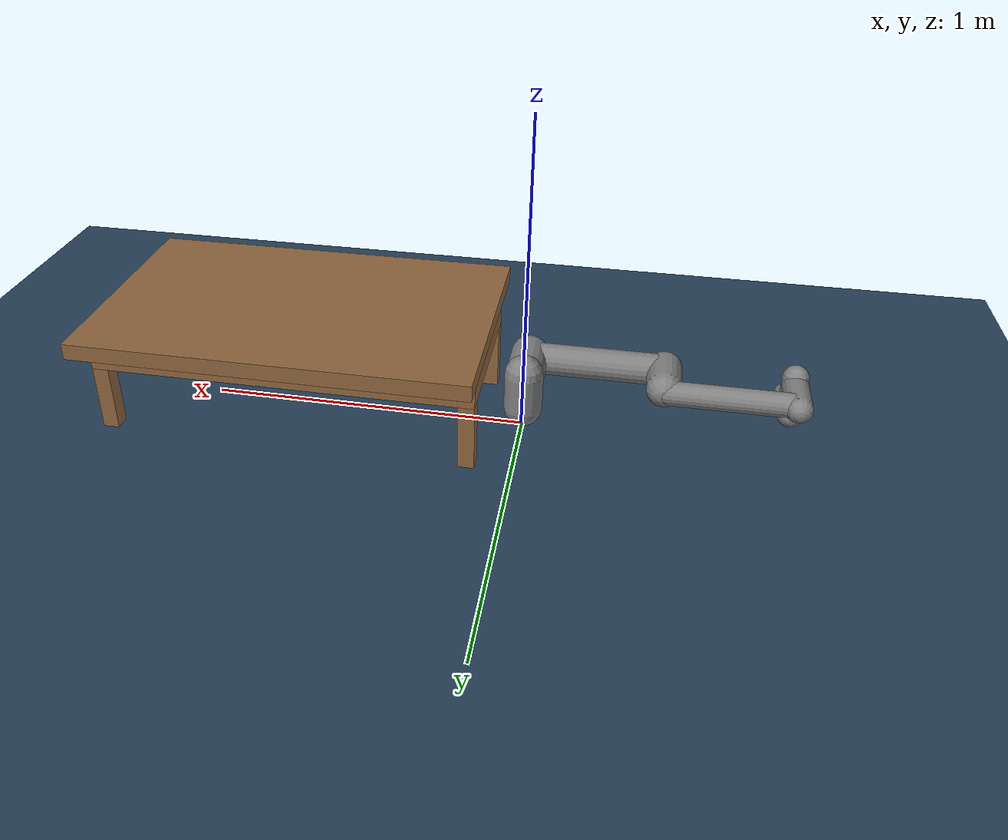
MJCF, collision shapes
<mujoco model="ur5e scene">
  <include file="ur5e.xml"/>
  <include file="table.xml"/>

  <statistic center="0.3 0 0.4" extent="0.8"/>

  <visual>
    <headlight diffuse="0.6 0.6 0.6" ambient="0.1 0.1 0.1" specular="0 0 0"/>
    <rgba haze="0.15 0.25 0.35 1"/>
    <global azimuth="120" elevation="-20"/>
  </visual>

  <asset>
    <texture type="skybox" builtin="gradient" rgb1="0.3 0.5 0.7" rgb2="0 0 0" width="512" height="3072"/>
    <texture type="2d" name="groundplane" builtin="checker" mark="edge" rgb1="0.2 0.3 0.4" rgb2="0.1 0.2 0.3"
      markrgb="0.8 0.8 0.8" width="300" height="300"/>
    <material name="groundplane" texture="groundplane" texuniform="true" texrepeat="5 5" reflectance="0.2"/>
  </asset>

  <worldbody>
    <light pos="0 0 1.5" dir="0 0 -1" directional="true"/>
    <geom name="floor" size="0 0 0.05" type="plane" material="groundplane"/>
  </worldbody>
</mujoco>

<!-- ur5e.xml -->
<mujoco model="ur5e">
  <compiler angle="radian" meshdir="assets" autolimits="true"/>

  <option integrator="implicitfast"/>

  <default>
    <default class="ur5e">
      <material specular="0.5" shininess="0.25"/>
      <joint axis="0 1 0" range="-6.28319 6.28319" armature="0.1"/>
      <general gaintype="fixed" biastype="affine" ctrlrange="-6.2831 6.2831" gainprm="2000" biasprm="0 -2000 -400"
        forcerange="-150 150"/>
      <default class="size3">
        <default class="size3_limited">
          <joint range="-3.1415 3.1415"/>
          <general ctrlrange="-3.1415 3.1415"/>
        </default>
      </default>
      <default class="size1">
        <general gainprm="500" biasprm="0 -500 -100" forcerange="-28 28"/>
      </default>
      <default class="visual">
        <geom type="mesh" contype="0" conaffinity="0" group="2"/>
      </default>
      <default class="collision">
        <geom type="capsule" group="3"/>
        <default class="eef_collision">
          <geom type="cylinder"/>
        </default>
      </default>
      <site size="0.001" rgba="0.5 0.5 0.5 0.3" group="4"/>
    </default>
  </default>

  <asset>
    <material class="ur5e" name="black" rgba="0.033 0.033 0.033 1"/>
    <material class="ur5e" name="jointgray" rgba="0.278 0.278 0.278 1"/>
    <material class="ur5e" name="linkgray" rgba="0.82 0.82 0.82 1"/>
    <material class="ur5e" name="urblue" rgba="0.49 0.678 0.8 1"/>

    <mesh file="base_0.obj"/>
    <mesh file="base_1.obj"/>
    <mesh file="shoulder_0.obj"/>
    <mesh file="shoulder_1.obj"/>
    <mesh file="shoulder_2.obj"/>
    <mesh file="upperarm_0.obj"/>
    <mesh file="upperarm_1.obj"/>
    <mesh file="upperarm_2.obj"/>
    <mesh file="upperarm_3.obj"/>
    <mesh file="forearm_0.obj"/>
    <mesh file="forearm_1.obj"/>
    <mesh file="forearm_2.obj"/>
    <mesh file="forearm_3.obj"/>
    <mesh file="wrist1_0.obj"/>
    <mesh file="wrist1_1.obj"/>
    <mesh file="wrist1_2.obj"/>
    <mesh file="wrist2_0.obj"/>
    <mesh file="wrist2_1.obj"/>
    <mesh file="wrist2_2.obj"/>
    <mesh file="wrist3.obj"/>
  </asset>

  <worldbody>
    <light name="spotlight" mode="targetbodycom" target="wrist_2_link" pos="0 -1 2"/>
    <body name="base" quat="0 0 0 -1" childclass="ur5e">
      <inertial mass="4.0" pos="0 0 0" diaginertia="0.00443333156 0.00443333156 0.0072"/>
      <geom mesh="base_0" material="black" class="visual"/>
      <geom mesh="base_1" material="jointgray" class="visual"/>
      <body name="shoulder_link" pos="0 0 0.163">
        <inertial mass="3.7" pos="0 0 0" diaginertia="0.0102675 0.0102675 0.00666"/>
        <joint name="shoulder_pan_joint" class="size3" axis="0 0 1"/>
        <geom mesh="shoulder_0" material="urblue" class="visual"/>
        <geom mesh="shoulder_1" material="black" class="visual"/>
        <geom mesh="shoulder_2" material="jointgray" class="visual"/>
        <geom class="collision" size="0.06 0.06" pos="0 0 -0.04"/>
        <body name="upper_arm_link" pos="0 0.138 0" quat="1 0 1 0">
          <inertial mass="8.393" pos="0 0 0.2125" diaginertia="0.133886 0.133886 0.0151074"/>
          <joint name="shoulder_lift_joint" class="size3"/>
          <geom mesh="upperarm_0" material="linkgray" class="visual"/>
          <geom mesh="upperarm_1" material="black" class="visual"/>
          <geom mesh="upperarm_2" material="jointgray" class="visual"/>
          <geom mesh="upperarm_3" material="urblue" class="visual"/>
          <geom class="collision" pos="0 -0.04 0" quat="1 1 0 0" size="0.06 0.06"/>
          <geom class="collision" size="0.05 0.2" pos="0 0 0.2"/>
          <body name="forearm_link" pos="0 -0.131 0.425">
            <inertial mass="2.275" pos="0 0 0.196" diaginertia="0.0311796 0.0311796 0.004095"/>
            <joint name="elbow_joint" class="size3_limited"/>
            <geom mesh="forearm_0" material="urblue" class="visual"/>
            <geom mesh="forearm_1" material="linkgray" class="visual"/>
            <geom mesh="forearm_2" material="black" class="visual"/>
            <geom mesh="forearm_3" material="jointgray" class="visual"/>
            <geom class="collision" pos="0 0.08 0" quat="1 1 0 0" size="0.055 0.06"/>
            <geom class="collision" size="0.038 0.19" pos="0 0 0.2"/>
            <body name="wrist_1_link" pos="0 0 0.392" quat="1 0 1 0">
              <inertial mass="1.219" pos="0 0.127 0" diaginertia="0.0025599 0.0025599 0.0021942"/>
              <joint name="wrist_1_joint" class="size1"/>
              <geom mesh="wrist1_0" material="black" class="visual"/>
              <geom mesh="wrist1_1" material="urblue" class="visual"/>
              <geom mesh="wrist1_2" material="jointgray" class="visual"/>
              <geom class="collision" pos="0 0.05 0" quat="1 1 0 0" size="0.04 0.07"/>
              <body name="wrist_2_link" pos="0 0.127 0">
                <inertial mass="1.219" pos="0 0 0.1" diaginertia="0.0025599 0.0025599 0.0021942"/>
                <joint name="wrist_2_joint" axis="0 0 1" class="size1"/>
                <geom mesh="wrist2_0" material="black" class="visual"/>
                <geom mesh="wrist2_1" material="urblue" class="visual"/>
                <geom mesh="wrist2_2" material="jointgray" class="visual"/>
                <geom class="collision" size="0.04 0.06" pos="0 0 0.04"/>
                <geom class="collision" pos="0 0.02 0.1" quat="1 1 0 0" size="0.04 0.04"/>
                <body name="wrist_3_link" pos="0 0 0.1">
                  <inertial mass="0.1889" pos="0 0.0771683 0" quat="1 0 0 1"
                    diaginertia="0.000132134 9.90863e-05 9.90863e-05"/>
                  <joint name="wrist_3_joint" class="size1"/>
                  <geom material="linkgray" mesh="wrist3" class="visual"/>
                  <geom class="eef_collision" pos="0 0.08 0" quat="1 1 0 0" size="0.04 0.02"/>
                  <site name="attachment_site" pos="0 0.1 0" quat="-1 1 0 0" size="0.015" rgba="1 0 0 1" type="sphere" group="0"/>
                </body>
              </body>
            </body>
          </body>
        </body>
      </body>
    </body>
  </worldbody>

  <actuator>
    <general class="size3" name="shoulder_pan" joint="shoulder_pan_joint"/>
    <general class="size3" name="shoulder_lift" joint="shoulder_lift_joint"/>
    <general class="size3_limited" name="elbow" joint="elbow_joint"/>
    <general class="size1" name="wrist_1" joint="wrist_1_joint"/>
    <general class="size1" name="wrist_2" joint="wrist_2_joint"/>
    <general class="size1" name="wrist_3" joint="wrist_3_joint"/>
  </actuator>
</mujoco>

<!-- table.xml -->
<mujoco>
  <!-- Assets (textures & materials) -->
  <asset>
    <!-- Update these file paths if your texture folder differs -->
    <texture name="T_simpleWoodTable" type="cube" height="1" width="1"
             file="assets/wood1.png"/>
    <material name="M_simpleWoodTable" texture="T_simpleWoodTable"
              rgba="0.8 0.8 0.8 1" shininess="0.2" reflectance="0.3" texuniform="false"/>
  </asset>

  <!-- Defaults used by the table body -->
  <default>
    <default class="viz_simpleWoodTable">
      <geom group="1" contype="0" conaffinity="0" type="mesh" material="M_simpleWoodTable"/>
    </default>
    <default class="body_simpleTable">
      <geom contype="1" conaffinity="1" group="4" rgba=".4 .5 .6 1"/>
      <joint limited="true" damping="1" frictionloss="0.5" armature=".01"/>
    </default>
  </default>

  <!-- The table geometry -->
  <worldbody>
    <!-- Place the table at x=0.70 so it’s next to the UR5e base at the origin -->
    <body name="simpleWoodTable" pos="0.70 0 0" childclass="body_simpleTable">
      <!-- Visual geoms (use viz_* classes if you want textured mesh geoms; here we keep boxes for simplicity) -->
      <geom class="viz_simpleWoodTable" type="box" size=".6 .375 .025" pos="0 0 0.335"/>
      <geom class="viz_simpleWoodTable" type="box" size="0.59 0.26 .05" pos="0 0 0.26"/>
      <geom class="viz_simpleWoodTable" type="box" size="0.025 0.025 0.105" pos="-0.565 0.235 0.105"/>
      <geom class="viz_simpleWoodTable" type="box" size="0.025 0.025 0.105" pos="-0.565 -0.235 0.105"/>
      <geom class="viz_simpleWoodTable" type="box" size="0.025 0.025 0.105" pos="0.565 0.235 0.105"/>
      <geom class="viz_simpleWoodTable" type="box" size="0.025 0.025 0.105" pos="0.565 -0.235 0.105"/>

      <!-- Collidable geoms -->
      <geom type="box" size=".6 .375 .025" pos="0 0 0.335" mass="40"/>
      <geom type="box" size="0.59 0.26 .05" pos="0 0 0.26"/>
      <geom type="box" size="0.025 0.025 0.105" pos="-0.565 0.235 0.105"/>
      <geom type="box" size="0.025 0.025 0.105" pos="-0.565 -0.235 0.105"/>
      <geom type="box" size="0.025 0.025 0.105" pos="0.565 0.235 0.105"/>
      <geom type="box" size="0.025 0.025 0.105" pos="0.565 -0.235 0.105"/>
    </body>
  </worldbody>
</mujoco>
